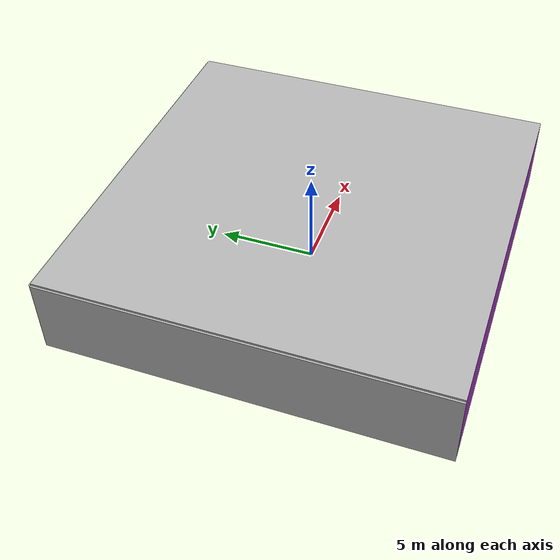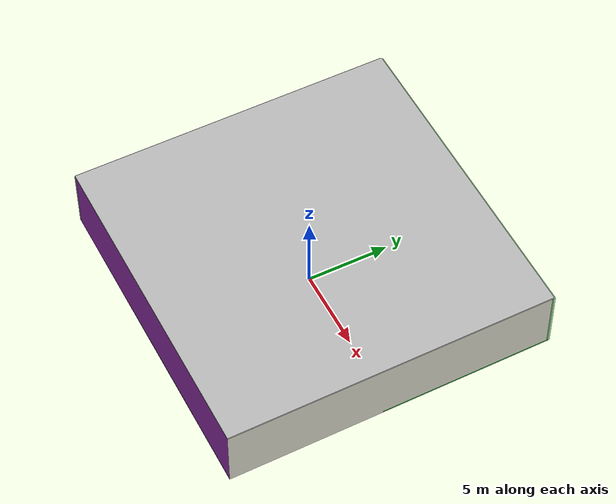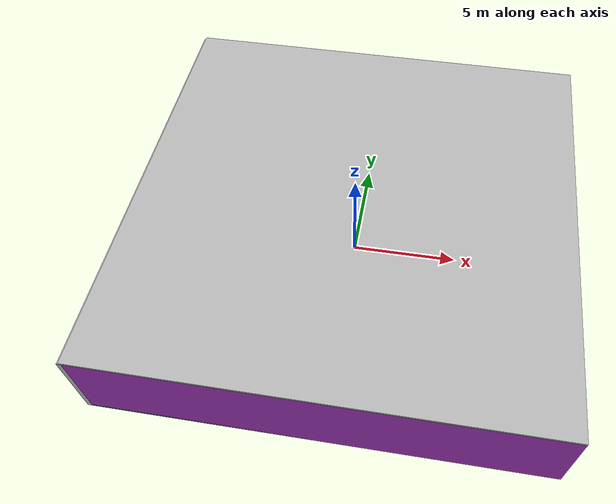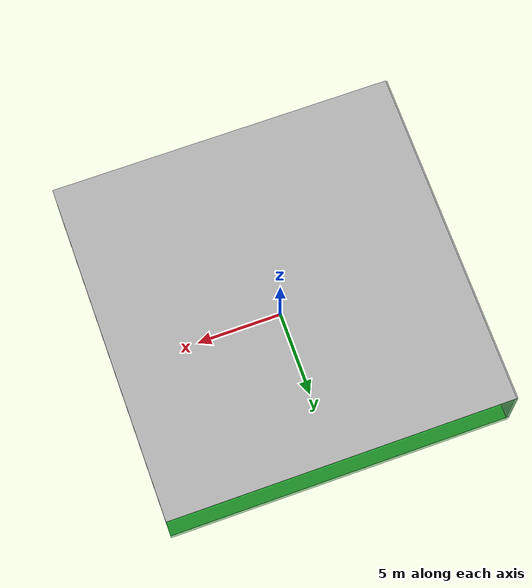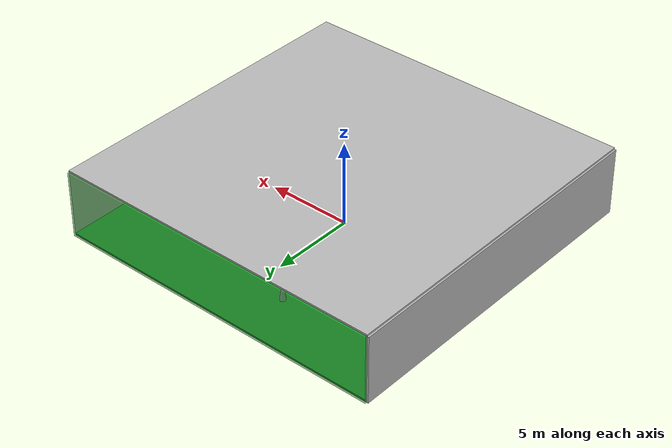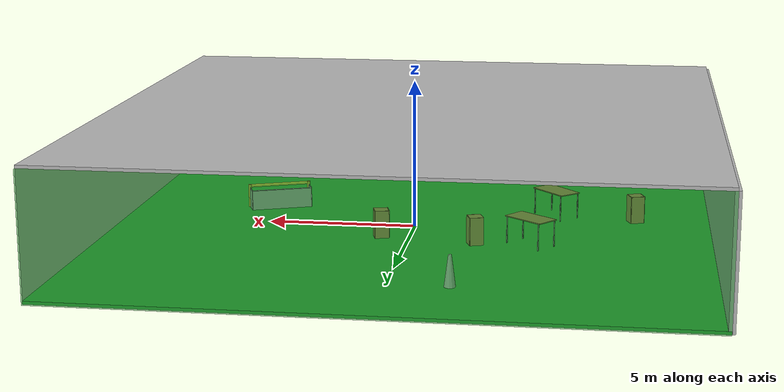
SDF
<sdf version="1.4">
 <world name="default">
  <physics type="ode">
   <max_step_size>0.001</max_step_size>
   <real_time_factor>1</real_time_factor>
   <real_time_update_rate>1000</real_time_update_rate>
   <gravity>0 0 -9.8</gravity>
  </physics>
  <scene><ambient>0.4 0.4 0.4 1</ambient><background>0.7 0.7 0.7 1</background><shadows>1</shadows></scene>
  <model name="Surrounding">
   <static>1</static>
   <link name="Ceiling">
    <collision name="Ceiling_Collision"><geometry><box><size>20 20 0.1</size></box></geometry></collision>
    <visual name="Ceiling_Visual">
     <geometry><box><size>20 20 0.1</size></box></geometry>
     <material>
      <script><uri>file://media/materials/scripts/gazebo.material</uri><name>Gazebo/JointAnchor</name></script>
     </material>
    </visual>
    <pose>0 0 4.05 0 0 0</pose>
   </link>
   <link name="Wall_South">
    <collision name="Wall_South_Collision">
     <geometry><box><size>20 0 4</size></box></geometry>
     <pose>0 0 2 0 -0 0</pose>
    </collision>
    <visual name="Wall_South_Visual">
     <pose>0 0 2 0 -0 0</pose>
     <geometry><box><size>20 0 4</size></box></geometry>
     <material>
      <script><uri>file://media/materials/scripts/gazebo.material</uri><name>Gazebo/Purple</name></script>
     </material>
    </visual>
    <velocity_decay><linear>0</linear><angular>0</angular></velocity_decay>
    <pose>0 -10 0 0 -0 0</pose>
   </link>
   <link name="Wall_East">
    <collision name="Wall_21_Collision">
     <geometry><box><size>20 0 4</size></box></geometry>
     <pose>0 0 2 0 -0 0</pose>
    </collision>
    <visual name="Wall_21_Visual">
     <pose>0 0 2 0 -0 0</pose>
     <geometry><box><size>20 0 4</size></box></geometry>
     <material>
      <script><uri>file://media/materials/scripts/gazebo.material</uri><name>Gazebo/PaintedWall</name></script>
     </material>
    </visual>
    <velocity_decay><linear>0</linear><angular>0</angular></velocity_decay>
    <pose>10 0 0 0 -0 1.5708</pose>
   </link>
   <link name="Wall_North">
    <collision name="Wall_22_Collision">
     <geometry><box><size>20 0.2 4</size></box></geometry>
     <pose>0 0 2 0 -0 0</pose>
    </collision>
    <visual name="Wall_22_Visual">
     <pose>0 0 2 0 -0 0</pose>
     <geometry><box><size>20 0.2 4</size></box></geometry>
     <material>
      <script><uri>file://media/materials/scripts/gazebo.material</uri><name>Gazebo/GreenTransparent</name></script>
     </material>
    </visual>
    <velocity_decay><linear>0</linear><angular>0</angular></velocity_decay>
    <pose>0 10 0 0 -0 0</pose>
   </link>
   <link name="Wall_West">
    <collision name="Wall_23_Collision">
     <geometry><box><size>20 0.2 4</size></box></geometry>
     <pose>0 0 2 0 -0 0</pose>
    </collision>
    <visual name="Wall_23_Visual">
     <pose>0 0 2 0 -0 0</pose>
     <geometry><box><size>20 0.2 4</size></box></geometry>
     <material>
      <script><uri>file://media/materials/scripts/gazebo.material</uri><name>Gazebo/PioneerBody</name></script>
     </material>
    </visual>
    <velocity_decay><linear>0</linear><angular>0</angular></velocity_decay>
    <pose>-10 0 0 0 0 -1.5708</pose>
   </link>
   <link name="Ground_link">
    <collision name="collision">
     <pose>0 0 .05 0 -0 0</pose>
     <geometry><box><size>20 20 0.1</size></box></geometry>
    </collision>
    <visual name="visual">
     <pose>0 0 .05 0 -0 0</pose>
     <geometry><box><size>20 20 0.1</size></box></geometry>
     <material>
      <script><uri>file://media/materials/scripts/gazebo.material</uri><name>Gazebo/GreenGlow</name></script>
     </material>
    </visual>
   </link>
   <static>1</static>
  </model>
  <spherical_coordinates>
   <surface_model>EARTH_WGS84</surface_model>
   <latitude_deg>0</latitude_deg>
   <longitude_deg>0</longitude_deg>
   <elevation>0</elevation>
   <heading_deg>0</heading_deg>
  </spherical_coordinates>
  <light name="lightball_0" type="diffuse">
   <diffuse>0.8 0.8 0.8 1</diffuse>
   <specular>0.2 0.2 0.2 1</specular>
   <attenuation>
    <range>100</range>
    <constant>0.7</constant>
    <linear>0.01</linear>
    <quadratic>0.001</quadratic>
   </attenuation>
   <direction>-0.5 0.1 -0.9</direction>
   <pose>-5.75198294493 3.33041260373 3.88889661657 0 0 0</pose>
  </light>
  <light name="lightball_1" type="diffuse">
   <diffuse>0.8 0.8 0.8 1</diffuse>
   <specular>0.2 0.2 0.2 1</specular>
   <attenuation>
    <range>100</range>
    <constant>0.7</constant>
    <linear>0.01</linear>
    <quadratic>0.001</quadratic>
   </attenuation>
   <direction>-0.5 0.1 -0.9</direction>
   <pose>9.50171996968 4.32183392555 3.36627679569 0 0 0</pose>
  </light>
  <light name="lightball_2" type="diffuse">
   <diffuse>0.8 0.8 0.8 1</diffuse>
   <specular>0.2 0.2 0.2 1</specular>
   <attenuation>
    <range>100</range>
    <constant>0.7</constant>
    <linear>0.01</linear>
    <quadratic>0.001</quadratic>
   </attenuation>
   <direction>-0.5 0.1 -0.9</direction>
   <pose>3.96972509984 -6.45653604617 1.2943456672 0 0 0</pose>
  </light>
  <light name="lightball_3" type="diffuse">
   <diffuse>0.8 0.8 0.8 1</diffuse>
   <specular>0.2 0.2 0.2 1</specular>
   <attenuation>
    <range>100</range>
    <constant>0.7</constant>
    <linear>0.01</linear>
    <quadratic>0.001</quadratic>
   </attenuation>
   <direction>-0.5 0.1 -0.9</direction>
   <pose>9.87174597259 -5.32868496511 2.86310927188 0 0 0</pose>
  </light>
  <light name="lightball_4" type="diffuse">
   <diffuse>0.8 0.8 0.8 1</diffuse>
   <specular>0.2 0.2 0.2 1</specular>
   <attenuation>
    <range>100</range>
    <constant>0.7</constant>
    <linear>0.01</linear>
    <quadratic>0.001</quadratic>
   </attenuation>
   <direction>-0.5 0.1 -0.9</direction>
   <pose>4.78728877045 -5.12541354334 1.19836398462 0 0 0</pose>
  </light>
  <light name="lightball_5" type="diffuse">
   <diffuse>0.8 0.8 0.8 1</diffuse>
   <specular>0.2 0.2 0.2 1</specular>
   <attenuation>
    <range>100</range>
    <constant>0.7</constant>
    <linear>0.01</linear>
    <quadratic>0.001</quadratic>
   </attenuation>
   <direction>-0.5 0.1 -0.9</direction>
   <pose>-2.07885321558 9.61059784284 2.77853791288 0 0 0</pose>
  </light>
  <light name="lightball_6" type="diffuse">
   <diffuse>0.8 0.8 0.8 1</diffuse>
   <specular>0.2 0.2 0.2 1</specular>
   <attenuation>
    <range>100</range>
    <constant>0.7</constant>
    <linear>0.01</linear>
    <quadratic>0.001</quadratic>
   </attenuation>
   <direction>-0.5 0.1 -0.9</direction>
   <pose>7.35996267911 5.47755161137 3.45893922401 0 0 0</pose>
  </light>
  <light name="lightball_7" type="diffuse">
   <diffuse>0.8 0.8 0.8 1</diffuse>
   <specular>0.2 0.2 0.2 1</specular>
   <attenuation>
    <range>100</range>
    <constant>0.7</constant>
    <linear>0.01</linear>
    <quadratic>0.001</quadratic>
   </attenuation>
   <direction>-0.5 0.1 -0.9</direction>
   <pose>7.57461220055 -7.26823702702 2.8923090669 0 0 0</pose>
  </light>
  <include><uri>model://cabinet</uri><pose>-7.4043131245 -1.28356518938 0 0 0 1.89928471436</pose></include>
  <include><uri>model://table</uri><pose>-4.68412268591 -1.72751403632 0 0 0 2.31651166795</pose></include>
  <include><uri>model://table</uri><pose>-4.04233782483 2.10120219243 0 0 0 2.46154289331</pose></include>
  <include><uri>model://cabinet</uri><pose>-2.26332497494 2.21131286556 0 0 0 0.323241928175</pose></include>
  <include>
   <uri>model://construction_cone</uri>
   <pose>-1.98272722938 6.99416285676 0 0 0 0.00685585766236</pose>
  </include>
  <include><uri>model://cabinet</uri><pose>0.888928272221 1.74216490626 0 0 0 1.8474528796</pose></include>
  <include>
   <uri>model://robocup_3Dsim_goal</uri>
   <pose>5.13248063457 -1.97981339261 0 0 0 1.95139698953</pose>
  </include>
 </world>
</sdf>

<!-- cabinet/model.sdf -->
<sdf version="1.5">
  <model name="cabinet">
    <static>true</static>
    <link name="cabinet_bottom_plate">
      <inertial>
        <pose>0 0 -1 0 0 0</pose>
        <inertia>
          <ixx>2.050000</ixx>
          <ixy>0</ixy>
          <ixz>0</ixz>
          <iyy>2.050000</iyy>
          <iyz>0</iyz>
          <izz>2.050000</izz>
        </inertia>
        <mass>25.000000</mass>
      </inertial>
      <collision name="cabinet_bottom_plate_geom">
        <pose>0 0 0.010000 0 0 0</pose>
        <geometry>
          <box>
            <size>0.450000 0.450000 0.020000</size>
          </box>
        </geometry>
      </collision>
      <visual name="cabinet_bottom_plate_geom_visual">
        <pose>0 0 0.010000 0 0 0</pose>
        <geometry>
          <box>
            <size>0.450000 0.450000 0.020000</size>
          </box>
        </geometry>
        <material>
          <script>
            <uri>model://media/materials/scripts/gazebo.material</uri>
            <name>Gazebo/Wood</name>
          </script>
        </material>
      </visual>
      <collision name="cabinet_bottom_plate_geom_cabinet_back_plate">
        <pose>0.235000 0 0.510000 0 0 0</pose>
        <geometry>
          <box>
            <size>0.020000 0.450000 1.020000</size>
          </box>
        </geometry>
      </collision>
      <visual name="cabinet_bottom_plate_geom_cabinet_back_plate_visual">
        <pose>0.235000 0 0.510000 0 0 0</pose>
        <geometry>
          <box>
            <size>0.020000 0.450000 1.020000</size>
          </box>
        </geometry>
        <material>
          <script>
            <uri>model://media/materials/scripts/gazebo.material</uri>
            <name>Gazebo/Wood</name>
          </script>
        </material>
      </visual>
      <collision name="cabinet_bottom_plate_geom_cabinet_left_plate">
        <pose>0 0.235000 0.510000 0 0 0</pose>
        <geometry>
          <box>
            <size>0.450000 0.020000 1.020000</size>
          </box>
        </geometry>
      </collision>
      <visual name="cabinet_bottom_plate_geom_cabinet_left_plate_visual">
        <pose>0 0.235000 0.510000 0 0 0</pose>
        <geometry>
          <box>
            <size>0.450000 0.020000 1.020000</size>
          </box>
        </geometry>
        <material>
          <script>
            <uri>model://media/materials/scripts/gazebo.material</uri>
            <name>Gazebo/Wood</name>
          </script>
        </material>
      </visual>
      <collision name="cabinet_bottom_plate_geom_cabinet_middle_plate">
        <pose>0 0 0.510000 0 0 0</pose>
        <geometry>
          <box>
            <size>0.450000 0.450000 0.020000</size>
          </box>
        </geometry>
      </collision>
      <visual name="cabinet_bottom_plate_geom_cabinet_middle_plate_visual">
        <pose>0 0 0.510000 0 0 0</pose>
        <geometry>
          <box>
            <size>0.450000 0.450000 0.020000</size>
          </box>
        </geometry>
        <material>
          <script>
            <uri>model://media/materials/scripts/gazebo.material</uri>
            <name>Gazebo/Wood</name>
          </script>
        </material>
      </visual>
      <collision name="cabinet_bottom_plate_geom_cabinet_right_plate">
        <pose>0 -0.235000 0.510000 0 0 0</pose>
        <geometry>
          <box>
            <size>0.450000 0.020000 1.020000</size>
          </box>
        </geometry>
      </collision>
      <visual name="cabinet_bottom_plate_geom_cabinet_right_plate_visual">
        <pose>0 -0.235000 0.510000 0 0 0</pose>
        <geometry>
          <box>
            <size>0.450000 0.020000 1.020000</size>
          </box>
        </geometry>
        <material>
          <script>
            <uri>model://media/materials/scripts/gazebo.material</uri>
            <name>Gazebo/Wood</name>
          </script>
        </material>
      </visual>
      <collision name="cabinet_bottom_plate_geom_cabinet_top_plate">
        <pose>0 0 1.010000 0 0 0</pose>
        <geometry>
          <box>
            <size>0.450000 0.450000 0.020000</size>
          </box>
        </geometry>
      </collision>
      <visual name="cabinet_bottom_plate_geom_cabinet_top_plate_visual">
        <pose>0 0 1.010000 0 0 0</pose>
        <geometry>
          <box>
            <size>0.450000 0.450000 0.020000</size>
          </box>
        </geometry>
        <material>
          <script>
            <uri>model://media/materials/scripts/gazebo.material</uri>
            <name>Gazebo/Wood</name>
          </script>
        </material>
      </visual>
    </link>
  </model>
</sdf>

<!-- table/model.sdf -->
<sdf version="1.5">
  <model name="table">
    <static>true</static>
    <link name="link">
      <collision name="surface">
        <pose>0 0 1.0 0 0 0</pose>
        <geometry>
          <box>
            <size>1.5 0.8 0.03</size>
          </box>
        </geometry>
        <surface>
          <friction>
            <ode>
              <mu>0.6</mu>
              <mu2>0.6</mu2>
            </ode>
          </friction>
        </surface>
      </collision>
      <visual name="visual1">
        <pose>0 0 1.0 0 0 0</pose>
        <geometry>
          <box>
            <size>1.5 0.8 0.03</size>
          </box>
        </geometry>
        <material>
          <script>
            <uri>model://media/materials/scripts/gazebo.material</uri>
            <name>Gazebo/Wood</name>
          </script>
        </material>
      </visual>
      <collision name="front_left_leg">
        <pose>0.68 0.38 0.5 0 0 0</pose>
        <geometry>
          <cylinder>
            <radius>0.02</radius>
            <length>1.0</length>
          </cylinder>
        </geometry>
      </collision>
      <visual name="front_left_leg">
        <pose>0.68 0.38 0.5 0 0 0</pose>
        <geometry>
          <cylinder>
            <radius>0.02</radius>
            <length>1.0</length>
          </cylinder>
        </geometry>
        <material>
          <script>
            <uri>model://media/materials/scripts/gazebo.material</uri>
            <name>Gazebo/Grey</name>
          </script>
        </material>
      </visual>
      <collision name="front_right_leg">
        <pose>0.68 -0.38 0.5 0 0 0</pose>
        <geometry>
          <cylinder>
            <radius>0.02</radius>
            <length>1.0</length>
          </cylinder>
        </geometry>
      </collision>
      <visual name="front_right_leg">
        <pose>0.68 -0.38 0.5 0 0 0</pose>
        <geometry>
          <cylinder>
            <radius>0.02</radius>
            <length>1.0</length>
          </cylinder>
        </geometry>
        <material>
          <script>
            <uri>model://media/materials/scripts/gazebo.material</uri>
            <name>Gazebo/Grey</name>
          </script>
        </material>
      </visual>
      <collision name="back_right_leg">
        <pose>-0.68 -0.38 0.5 0 0 0</pose>
        <geometry>
          <cylinder>
            <radius>0.02</radius>
            <length>1.0</length>
          </cylinder>
        </geometry>
      </collision>
      <visual name="back_right_leg">
        <pose>-0.68 -0.38 0.5 0 0 0</pose>
        <geometry>
          <cylinder>
            <radius>0.02</radius>
            <length>1.0</length>
          </cylinder>
        </geometry>
        <material>
          <script>
            <uri>model://media/materials/scripts/gazebo.material</uri>
            <name>Gazebo/Grey</name>
          </script>
        </material>
      </visual>
      <collision name="back_left_leg">
        <pose>-0.68 0.38 0.5 0 0 0</pose>
        <geometry>
          <cylinder>
            <radius>0.02</radius>
            <length>1.0</length>
          </cylinder>
        </geometry>
      </collision>
      <visual name="back_left_leg">
        <pose>-0.68 0.38 0.5 0 0 0</pose>
        <geometry>
          <cylinder>
            <radius>0.02</radius>
            <length>1.0</length>
          </cylinder>
        </geometry>
        <material>
          <script>
            <uri>model://media/materials/scripts/gazebo.material</uri>
            <name>Gazebo/Grey</name>
          </script>
        </material>
      </visual>
    </link>
  </model>
</sdf>

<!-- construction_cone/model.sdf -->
<sdf version="1.5">
  <model name="Construction Cone">
    <link name="link">
      <collision name="collision">
        <geometry>
          <mesh>
            <scale>10 10 10</scale>
            <uri>file://isr-testbed/construction_cone/meshes/construction_cone.dae</uri>
          </mesh>
        </geometry>
      </collision>
      <visual name="visual">
        <geometry>
          <mesh>
            <scale>10 10 10</scale>
            <uri>file://isr-testbed/construction_cone/meshes/construction_cone.dae</uri>
          </mesh>
        </geometry>
      </visual>
    </link>
  </model>
</sdf>

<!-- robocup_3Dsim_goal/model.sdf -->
<sdf version="1.5">
  <model name="robocup_3d_goal">
    <static>true</static>
    <link name="left_post">
      <pose>0 1.05 0.45 0 0 0</pose>
      <collision name="collision">
        <geometry>
          <cylinder>
            <radius>0.05</radius>
            <length>0.9</length>
          </cylinder>
        </geometry>
      </collision>
      <visual name="visual">
        <geometry>
          <cylinder>
            <radius>0.05</radius>
            <length>0.9</length>
          </cylinder>
        </geometry>
        <material>
          <script>
            <uri>file://media/materials/scripts/gazebo.material</uri>
            <name>Gazebo/ZincYellow</name>
          </script>
        </material>
      </visual>
    </link>
    <link name="left_support_horiz_lower">
      <pose>0.30 1.05 0.01 0 0 0</pose>
      <collision name="collision">
        <geometry>
          <box>
            <size>0.50 0.02 0.02</size>
          </box>
        </geometry>
      </collision>
      <visual name="visual">
        <geometry>
          <box>
            <size>0.50 0.02 0.02</size>
          </box>
        </geometry>
        <material>
          <script>
            <uri>file://media/materials/scripts/gazebo.material</uri>
            <name>Gazebo/White</name>
          </script>
        </material>
      </visual>
    </link>
    <link name="left_support_horiz_upper">
      <pose>0.30 1.05 0.79 0 0 0</pose>
      <collision name="collision">
        <geometry>
          <box>
            <size>0.50 0.02 0.02</size>
          </box>
        </geometry>
      </collision>
      <visual name="visual">
        <geometry>
          <box>
            <size>0.50 0.02 0.02</size>
          </box>
        </geometry>
        <material>
          <script>
            <uri>file://media/materials/scripts/gazebo.material</uri>
            <name>Gazebo/White</name>
          </script>
        </material>
      </visual>
    </link>
    <link name="left_support_vertical">
      <pose>0.56 1.05 0.4 0 1.5708 0</pose>
      <collision name="collision">
        <geometry>
          <box>
            <size>0.80 0.02 0.02</size>
          </box>
        </geometry>
      </collision>
      <visual name="visual">
        <geometry>
          <box>
            <size>0.80 0.02 0.02</size>
          </box>
        </geometry>
        <material>
          <script>
            <uri>file://media/materials/scripts/gazebo.material</uri>
            <name>Gazebo/White</name>
          </script>
        </material>
      </visual>
    </link>
    <link name="right_support_horiz_lower">
      <pose>0.30 -1.05 0.01 0 0 0</pose>
      <collision name="collision">
        <geometry>
          <box>
            <size>0.50 0.02 0.02</size>
          </box>
        </geometry>
      </collision>
      <visual name="visual">
        <geometry>
          <box>
            <size>0.50 0.02 0.02</size>
          </box>
        </geometry>
        <material>
          <script>
            <uri>file://media/materials/scripts/gazebo.material</uri>
            <name>Gazebo/White</name>
          </script>
        </material>
      </visual>
    </link>
    <link name="right_support_horiz_upper">
      <pose>0.30 -1.05 0.79 0 0 0</pose>
      <collision name="collision">
        <geometry>
          <box>
            <size>0.50 0.02 0.02</size>
          </box>
        </geometry>
      </collision>
      <visual name="visual">
        <geometry>
          <box>
            <size>0.50 0.02 0.02</size>
          </box>
        </geometry>
        <material>
          <script>
            <uri>file://media/materials/scripts/gazebo.material</uri>
            <name>Gazebo/White</name>
          </script>
        </material>
      </visual>
    </link>
    <link name="right_support_vertical">
      <pose>0.56 -1.05 0.4 0 1.5708 0</pose>
      <collision name="collision">
        <geometry>
          <box>
            <size>0.80 0.02 0.02</size>
          </box>
        </geometry>
      </collision>
      <visual name="visual">
        <geometry>
          <box>
            <size>0.80 0.02 0.02</size>
          </box>
        </geometry>
        <material>
          <script>
            <uri>file://media/materials/scripts/gazebo.material</uri>
            <name>Gazebo/White</name>
          </script>
        </material>
      </visual>
    </link>
    <link name="center_support_horiz_lower">
      <pose>0.56 0 0.01 0 1.5708 0</pose>
      <collision name="collision">
        <geometry>
          <box>
            <size>0.02 2.08 0.02</size>
          </box>
        </geometry>
      </collision>
      <visual name="visual">
        <geometry>
          <box>
            <size>0.02 2.08 0.02</size>
          </box>
        </geometry>
        <material>
          <script>
            <uri>file://media/materials/scripts/gazebo.material</uri>
            <name>Gazebo/White</name>
          </script>
        </material>
      </visual>
    </link>
    <link name="center_support_horiz_upper">
      <pose>0.56 0 0.79 0 1.5708 0</pose>
      <collision name="collision">
        <geometry>
          <box>
            <size>0.02 2.08 0.02</size>
          </box>
        </geometry>
      </collision>
      <visual name="visual">
        <geometry>
          <box>
            <size>0.02 2.08 0.02</size>
          </box>
        </geometry>
        <material>
          <script>
            <uri>file://media/materials/scripts/gazebo.material</uri>
            <name>Gazebo/White</name>
          </script>
        </material>
      </visual>
    </link>
    <link name="right_post">
      <pose>0 -1.05 0.45 0 0 0</pose>
      <collision name="collision">
        <geometry>
          <cylinder>
            <radius>0.05</radius>
            <length>0.9</length>
          </cylinder>
        </geometry>
      </collision>
      <visual name="visual">
        <geometry>
          <cylinder>
            <radius>0.05</radius>
            <length>0.9</length>
          </cylinder>
        </geometry>
        <material>
          <script>
            <uri>file://media/materials/scripts/gazebo.material</uri>
            <name>Gazebo/ZincYellow</name>
          </script>
        </material>
      </visual>
    </link>
    <link name="crossbar">
      <pose>0 0 0.85 1.57 1.57 0</pose>
      <collision name="collision">
        <geometry>
          <cylinder>
            <radius>0.05</radius>
            <length>2.0</length>
          </cylinder>
        </geometry>
      </collision>
      <visual name="visual">
        <geometry>
          <cylinder>
            <radius>0.05</radius>
            <length>2.0</length>
          </cylinder>
        </geometry>
        <material>
          <script>
            <uri>file://media/materials/scripts/gazebo.material</uri>
            <name>Gazebo/ZincYellow</name>
          </script>
        </material>
      </visual>
    </link>
    <link name="center_net">
      <pose>0.56 0 0.40 0 0 0</pose>
      <collision name="collision">
        <geometry>
          <box>
            <size>0.01 2.1 0.80</size>
          </box>
        </geometry>
      </collision>
      <visual name="visual">
        <geometry>
          <box>
            <size>0.01 2.1 0.80</size>
          </box>
        </geometry>
        <material>
          <script>
            <uri>model://../model_source/models/robocup09_spl_field/materials/scripts/</uri>
            <uri>model://../model_source/models/robocup09_spl_field/materials/textures/</uri>
            <name>RoboCup/Net</name>
          </script>
        </material>
      </visual>
    </link>
    <link name="left_net">
      <pose>0.30 1.05 0.40 0 0 0</pose>
      <collision name="collision">
        <geometry>
          <box>
            <size>0.50 0.01 0.76</size>
          </box>
        </geometry>
      </collision>
      <visual name="visual">
        <geometry>
          <box>
            <size>0.50 0.01 0.76</size>
          </box>
        </geometry>
        <material>
          <script>
            <uri>model://../model_source/models/robocup09_spl_field/materials/scripts/</uri>
            <uri>model://../model_source/models/robocup09_spl_field/materials/textures/</uri>
            <name>RoboCup/Net</name>
          </script>
        </material>
      </visual>
    </link>
    <link name="right_net">
      <pose>0.30 -1.05 0.40 0 0 0</pose>
      <collision name="collision">
        <geometry>
          <box>
            <size>0.50 0.01 0.76</size>
          </box>
        </geometry>
      </collision>
      <visual name="visual">
        <geometry>
          <box>
            <size>0.50 0.01 0.76</size>
          </box>
        </geometry>
        <material>
          <script>
            <uri>model://../model_source/models/robocup09_spl_field/materials/scripts/</uri>
            <uri>model://../model_source/models/robocup09_spl_field/materials/textures/</uri>
            <name>RoboCup/Net</name>
          </script>
        </material>
      </visual>
    </link>
  </model>
</sdf>
